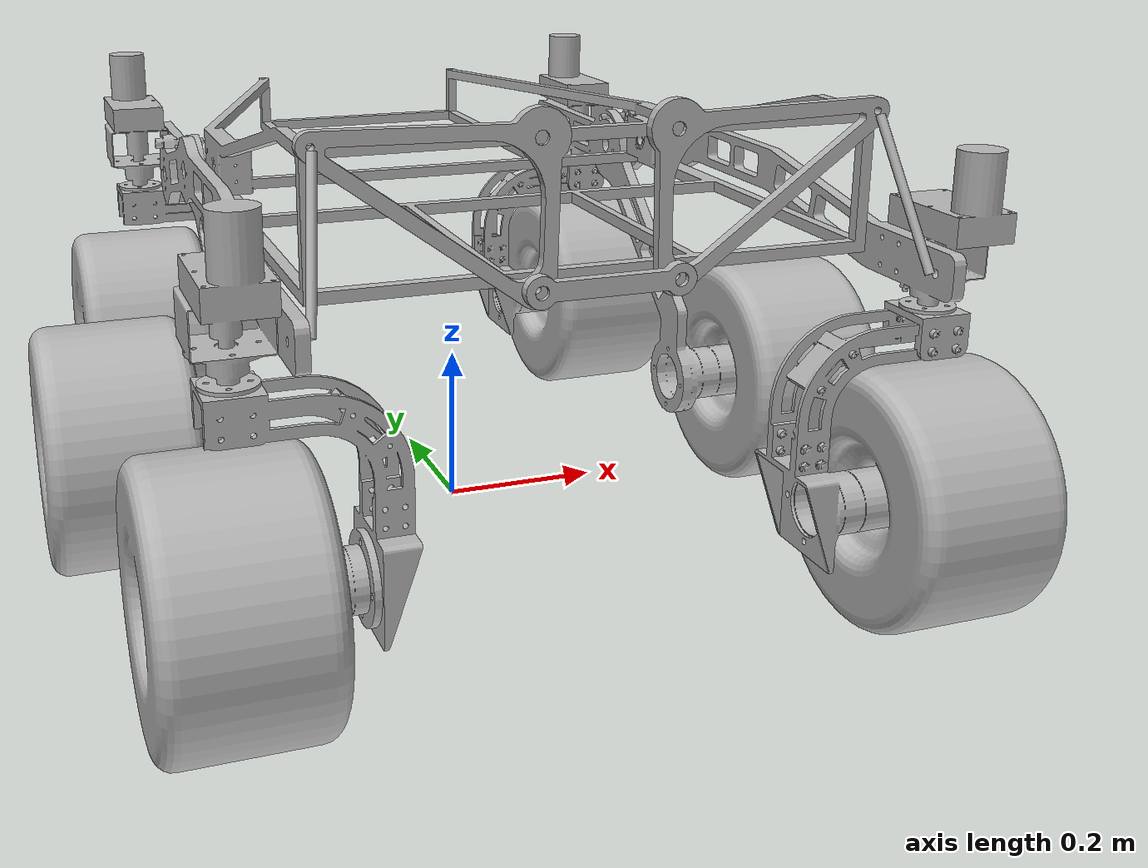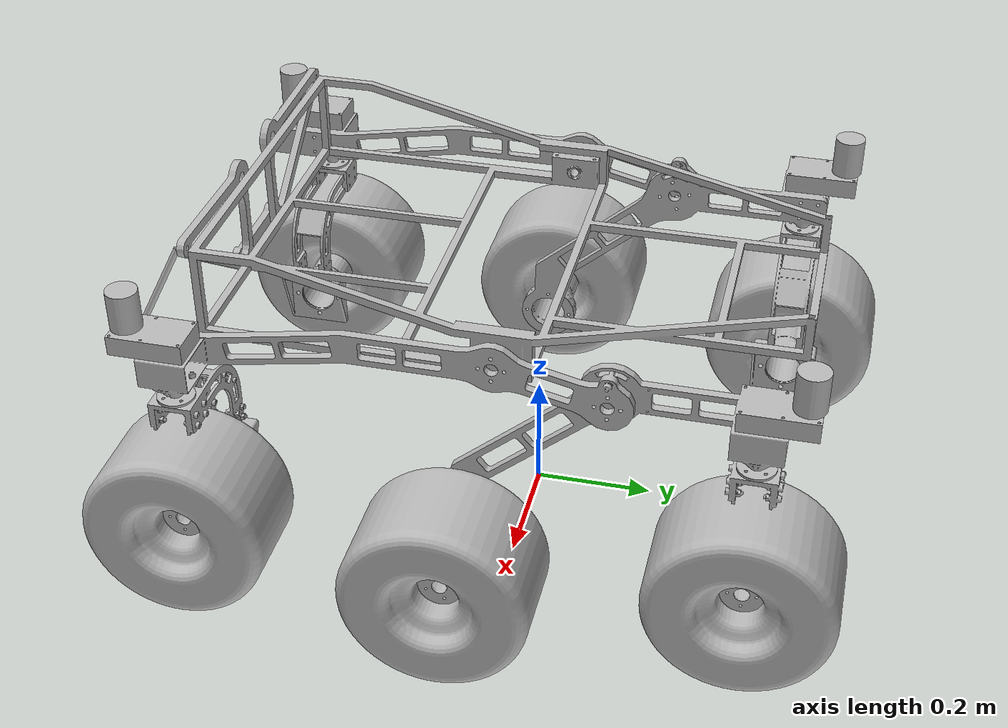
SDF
<?xml version='1.0'?>
<sdf version='1.4'>
<model name="MSI Rover">
  <static>0</static>

<!---------------------------      Chassis Assembly Begins       --------------------------->

  <link name='Chassis'>
    <self_collide>1</self_collide>
    <pose>0.0000 0.0000 0.4720 0.0000 0.0000 0.0000</pose>
    <collision name='Chassis_Collision'>
      <geometry>
        <mesh>
          <scale>0.0010 0.0010 0.0010</scale>
          <uri>model://msi_rover/meshes/Chassis.STL</uri>
        </mesh>
      </geometry>
<!------------ TODO ------------>
    </collision>
    <visual name='Chassis_Visual'>
      <geometry>
        <mesh>
          <scale>0.0010 0.0010 0.0010</scale>
          <uri>model://msi_rover/meshes/Chassis.STL</uri>
        </mesh>
      </geometry>
<!------------ TODO ------------>
    </visual>
    <inertial>
      <mass>7.25940145</mass>                                  <!-- Volume = 0.000902 m^3 -->
      <pose>0.000039 -0.055951 0.001287 0 0 0</pose>
      <inertia>
        <ixx>54.5702500000</ixx>
        <ixy>-0.0031848454</ixy>
        <ixz>-0.001413798</ixz>
        <iyy>55.8663750000</iyy>
        <iyz>2.6596287109</iyz>
        <izz>107.3700250000</izz>
      </inertia>
    </inertial>
  </link>

<!---------------------------       Chassis Assembly Ends        --------------------------->
<!--------------------------- Left Rocker-Bogie Assembly Begins  --------------------------->

  <link name='Left_Rocker'>
    <self_collide>1</self_collide>
    <pose>-0.3270 0.0000 0.4720 0.0000 0.0000 0.0000</pose>
    <collision name='Left_Rocker_Collision'>
      <geometry>
        <mesh>
          <scale>0.0010 0.0010 0.0010</scale>
          <uri>model://msi_rover/meshes/Rocker_L.STL</uri>
        </mesh>
      </geometry>
<!------------ TODO ------------>
    </collision>
    <visual name='Left_Rocker_Visual'>
      <geometry>
        <mesh>
          <scale>0.0010 0.0010 0.0010</scale>
          <uri>model://msi_rover/meshes/Rocker_L.STL</uri>
        </mesh>
      </geometry>
<!------------ TODO ------------>
    </visual>
<!------------ TODO ------------>
  </link>

  <link name='Left_Bogie'>
    <self_collide>1</self_collide>
    <pose>-0.2940 0.1750 0.4320 0.0000 0.0000 0.0000</pose>
    <collision name='Left_Bogie_Collision'>
      <geometry>
        <mesh>
          <scale>0.0010 0.0010 0.0010</scale>
          <uri>model://msi_rover/meshes/Bogie_L.STL</uri>
        </mesh>
      </geometry>
<!------------ TODO ------------>
    </collision>
    <visual name='Left_Bogie_Visual'>
      <geometry>
        <mesh>
          <scale>0.0010 0.0010 0.0010</scale>
          <uri>model://msi_rover/meshes/Bogie_L.STL</uri>
        </mesh>
      </geometry>
<!------------ TODO ------------>
    </visual>
<!------------ TODO ------------>
  </link>

  <link name='Left_Rear_Steering'>
    <self_collide>1</self_collide>
    <pose>-0.3810 -0.4900 0.36800 0.0000 0.0000 0.0000</pose>
    <collision name='Left_Rear_Steering_Collision'>
      <geometry>
        <mesh>
          <scale>0.0010 0.0010 0.0010</scale>
          <uri>model://msi_rover/meshes/C_Assembly_L.STL</uri>
        </mesh>
      </geometry>
<!------------ TODO ------------>
    </collision>
    <visual name='Left_Rear_Steering_Visual'>
      <geometry>
        <mesh>
          <scale>0.0010 0.0010 0.0010</scale>
          <uri>model://msi_rover/meshes/C_Assembly_L.STL</uri>
        </mesh>
      </geometry>
<!------------ TODO ------------>
    </visual>
<!------------ TODO ------------>
  </link>

  <link name='Left_Front_Steering'>
    <self_collide>1</self_collide>
    <pose>-0.3480 0.4000 0.3680 0.0000 0.0000 0.0000</pose>
    <collision name='Left_Front_Steering_Collision'>
      <geometry>
        <mesh>
          <scale>0.0010 0.0010 0.0010</scale>
          <uri>model://msi_rover/meshes/C_Assembly_L.STL</uri>
        </mesh>
      </geometry>
<!------------ TODO ------------>
    </collision>
    <visual name='Left_Front_Steering_Visual'>
      <geometry>
        <mesh>
          <scale>0.0010 0.0010 0.0010</scale>
          <uri>model://msi_rover/meshes/C_Assembly_L.STL</uri>
        </mesh>
      </geometry>
<!------------ TODO ------------>
    </visual>
<!------------ TODO ------------>
  </link>

  <link name='Left_Rear_Tyre'>
    <self_collide>1</self_collide>
    <pose>-0.3910 -0.4900 0.1500 0.0000 0.0000 0.0000</pose>
    <collision name='Left_Rear_Tyre_Collision'>
      <geometry>
        <mesh>
          <scale>0.0010 0.0010 0.0010</scale>
          <uri>model://msi_rover/meshes/Tyre.STL</uri>
        </mesh>
      </geometry>
<!------------ TODO ------------>
    </collision>
    <visual name='Left_Rear_Tyre_Visual'>
      <geometry>
        <mesh>
          <scale>0.0010 0.0010 0.0010</scale>
          <uri>model://msi_rover/meshes/Tyre.STL</uri>
        </mesh>
      </geometry>
<!------------ TODO ------------>
    </visual>
<!------------ TODO ------------>
  </link>

  <link name='Left_Middle_Tyre'>
    <self_collide>1</self_collide>
    <pose>-0.4480 -0.0500 0.1500 0.0000 0.0000 0.0000</pose>
    <collision name='Left_Middle_Tyre_Collision'>
      <geometry>
        <mesh>
          <scale>0.0010 0.0010 0.0010</scale>
          <uri>model://msi_rover/meshes/Tyre.STL</uri>
        </mesh>
      </geometry>
<!------------ TODO ------------>
    </collision>
    <visual name='Left_Middle_Tyre_Visual'>
      <geometry>
        <mesh>
          <scale>0.0010 0.0010 0.0010</scale>
          <uri>model://msi_rover/meshes/Tyre.STL</uri>
        </mesh>
      </geometry>
<!------------ TODO ------------>
    </visual>
<!------------ TODO ------------>
  </link>

  <link name='Left_Front_Tyre'>
    <self_collide>1</self_collide>
    <pose>-0.3580 0.4000 0.1500 0.0000 0.0000 0.0000</pose>
    <collision name='Left_Front_Tyre_Collision'>
      <geometry>
        <mesh>
          <scale>0.0010 0.0010 0.0010</scale>
          <uri>model://msi_rover/meshes/Tyre.STL</uri>
        </mesh>
      </geometry>
<!------------ TODO ------------>
    </collision>
    <visual name='Left_Front_Tyre_Visual'>
      <geometry>
        <mesh>
          <scale>0.0010 0.0010 0.0010</scale>
          <uri>model://msi_rover/meshes/Tyre.STL</uri>
        </mesh>
      </geometry>
<!------------ TODO ------------>
    </visual>
<!------------ TODO ------------>
  </link>

<!---------------------------         Joints Subsection          --------------------------->

  <joint type="revolute" name="Left_Rocker_Joint">
    <pose>0.0000 0.0000 0.0000 0.0000 0.0000 0.0000</pose>
    <child>Left_Rocker</child>
    <parent>Chassis</parent>
    <axis>
      <xyz>1 0 0</xyz>
<!------------ TODO ------------>
    </axis>
<!------------ TODO ------------>
  </joint>

  <joint type="revolute" name="Left_Bogie_Joint">
    <pose>0.0000 0.0000 0.0000 0.0000 0.0000 0.0000</pose>
    <child>Left_Bogie</child>
    <parent>Left_Rocker</parent>
    <axis>
      <xyz>1 0 0</xyz>
<!------------ TODO ------------>
    </axis>
<!------------ TODO ------------>
  </joint>

  <joint type="revolute" name="Left_Rear_Steering_Joint">
    <pose>0.0000 0.0000 0.0000 0.0000 0.0000 0.0000</pose>
    <child>Left_Rear_Steering</child>
    <parent>Left_Rocker</parent>
    <axis>
      <xyz>0 0 -1</xyz>
<!------------ TODO ------------>
      <limit>
        <lower>0</lower>
        <upper>0</upper>
      </limit>
<!------------ TODO ------------>
    </axis>
<!------------ TODO ------------>
  </joint>

  <joint type="revolute" name="Left_Front_Steering_Joint">
    <pose>0.0000 0.0000 0.0000 0.0000 0.0000 0.0000</pose>
    <child>Left_Front_Steering</child>
    <parent>Left_Bogie</parent>
    <axis>
      <xyz>0 0 -1</xyz>
<!------------ TODO ------------>
      <limit>
        <lower>0</lower>
        <upper>0</upper>
      </limit>
<!------------ TODO ------------>
    </axis>
<!------------ TODO ------------>
  </joint>

  <joint type="revolute" name="Left_Rear_Tyre_Joint">
    <pose>0.0000 0.0000 0.0000 0.0000 0.0000 0.0000</pose>
    <child>Left_Rear_Tyre</child>
    <parent>Left_Rear_Steering</parent>
    <axis>
      <xyz>1 0 0</xyz>
<!------------ TODO ------------>
    </axis>
<!------------ TODO ------------>
  </joint>

  <joint type="revolute" name="Left_Middle_Tyre_Joint">
    <pose>0.0000 0.0000 0.0000 0.0000 0.0000 0.0000</pose>
    <child>Left_Middle_Tyre</child>
    <parent>Left_Bogie</parent>
    <axis>
      <xyz>1 0 0</xyz>
<!------------ TODO ------------>
    </axis>
<!------------ TODO ------------>
  </joint>

  <joint type="revolute" name="Left_Front_Tyre_Joint">
    <pose>0.0000 0.0000 0.0000 0.0000 0.0000 0.0000</pose>
    <child>Left_Front_Tyre</child>
    <parent>Left_Front_Steering</parent>
    <axis>
      <xyz>1 0 0</xyz>
<!------------ TODO ------------>
    </axis>
<!------------ TODO ------------>
  </joint>

<!---------------------------  Left Rocker-Bogie Assembly Ends   --------------------------->
<!--------------------------- Right Rocker-Bogie Assembly Begins --------------------------->

  <link name='Right_Rocker'>
    <self_collide>1</self_collide>
    <pose>0.3270 0.0000 0.4720 0.0000 0.0000 0.0000</pose>
    <collision name='Right_Rocker_Collision'>
      <geometry>
        <mesh>
          <scale>0.0010 0.0010 0.0010</scale>
          <uri>model://msi_rover/meshes/Rocker_R.STL</uri>
        </mesh>
      </geometry>
<!------------ TODO ------------>
    </collision>
    <visual name='Right_Rocker_Visual'>
      <geometry>
        <mesh>
          <scale>0.0010 0.0010 0.0010</scale>
          <uri>model://msi_rover/meshes/Rocker_R.STL</uri>
        </mesh>
      </geometry>
<!------------ TODO ------------>
    </visual>
<!------------ TODO ------------>
  </link>

  <link name='Right_Bogie'>
    <self_collide>1</self_collide>
    <pose>0.2940 0.1750 0.4320 0.0000 0.0000 0.0000</pose>
    <collision name='Right_Bogie_Collision'>
      <geometry>
        <mesh>
          <scale>0.0010 0.0010 0.0010</scale>
          <uri>model://msi_rover/meshes/Bogie_R.STL</uri>
        </mesh>
      </geometry>
<!------------ TODO ------------>
    </collision>
    <visual name='Right_Bogie_Visual'>
      <geometry>
        <mesh>
          <scale>0.0010 0.0010 0.0010</scale>
          <uri>model://msi_rover/meshes/Bogie_R.STL</uri>
        </mesh>
      </geometry>
<!------------ TODO ------------>
    </visual>
<!------------ TODO ------------>
  </link>

  <link name='Right_Rear_Steering'>
    <self_collide>1</self_collide>
    <pose>0.3810 -0.4900 0.3680 0.0000 0.0000 0.0000</pose>
    <collision name='Right_Rear_Steering_Collision'>
      <geometry>
        <mesh>
          <scale>0.0010 0.0010 0.0010</scale>
          <uri>model://msi_rover/meshes/C_Assembly_R.STL</uri>
        </mesh>
      </geometry>
<!------------ TODO ------------>
    </collision>
    <visual name='Right_Rear_Steering_Visual'>
      <geometry>
        <mesh>
          <scale>0.0010 0.0010 0.0010</scale>
          <uri>model://msi_rover/meshes/C_Assembly_R.STL</uri>
        </mesh>
      </geometry>
<!------------ TODO ------------>
    </visual>
<!------------ TODO ------------>
  </link>

  <link name='Right_Front_Steering'>
    <self_collide>1</self_collide>
    <pose>0.3480 0.4000 0.3680 0.0000 0.0000 0.0000</pose>
    <collision name='Right_Front_Steering_Collision'>
      <geometry>
        <mesh>
          <scale>0.0010 0.0010 0.0010</scale>
          <uri>model://msi_rover/meshes/C_Assembly_R.STL</uri>
        </mesh>
      </geometry>
<!------------ TODO ------------>
    </collision>
    <visual name='Right_Front_Steering_Visual'>
      <geometry>
        <mesh>
          <scale>0.0010 0.0010 0.0010</scale>
          <uri>model://msi_rover/meshes/C_Assembly_R.STL</uri>
        </mesh>
      </geometry>
<!------------ TODO ------------>
    </visual>
<!------------ TODO ------------>
  </link>

  <link name='Right_Rear_Tyre'>
    <self_collide>1</self_collide>
    <pose>0.3910 -0.4900 0.1500 0.0000 0.0000 0.0000</pose>
    <collision name='Right_Rear_Tyre_Collision'>
      <geometry>
        <mesh>
          <scale>0.0010 0.0010 0.0010</scale>
          <uri>model://msi_rover/meshes/Tyre.STL</uri>
        </mesh>
      </geometry>
<!------------ TODO ------------>
    </collision>
    <visual name='Right_Rear_Tyre_Visual'>
      <geometry>
        <mesh>
          <scale>0.0010 0.0010 0.0010</scale>
          <uri>model://msi_rover/meshes/Tyre.STL</uri>
        </mesh>
      </geometry>
<!------------ TODO ------------>
    </visual>
<!------------ TODO ------------>
  </link>

  <link name='Right_Middle_Tyre'>
    <self_collide>1</self_collide>
    <pose>0.4480 -0.0500 0.1500 0.0000 0.0000 0.0000</pose>
    <collision name='Right_Middle_Tyre_Collision'>
      <geometry>
        <mesh>
          <scale>0.0010 0.0010 0.0010</scale>
          <uri>model://msi_rover/meshes/Tyre.STL</uri>
        </mesh>
      </geometry>
<!------------ TODO ------------>
    </collision>
    <visual name='Right_Middle_Tyre_Visual'>
      <geometry>
        <mesh>
          <scale>0.0010 0.0010 0.0010</scale>
          <uri>model://msi_rover/meshes/Tyre.STL</uri>
        </mesh>
      </geometry>
<!------------ TODO ------------>
    </visual>
<!------------ TODO ------------>
  </link>

  <link name='Right_Front_Tyre'>
    <self_collide>1</self_collide>
    <pose>0.3580 0.4000 0.1500 0.0000 0.0000 0.0000</pose>
    <collision name='Right_Front_Tyre_Collision'>
      <geometry>
        <mesh>
          <scale>0.0010 0.0010 0.0010</scale>
          <uri>model://msi_rover/meshes/Tyre.STL</uri>
        </mesh>
      </geometry>
<!------------ TODO ------------>
    </collision>
    <visual name='Right_Front_Tyre_Visual'>
      <geometry>
        <mesh>
          <scale>0.0010 0.0010 0.0010</scale>
          <uri>model://msi_rover/meshes/Tyre.STL</uri>
        </mesh>
      </geometry>
<!------------ TODO ------------>
    </visual>
<!------------ TODO ------------>
  </link>

<!---------------------------         Joints Subsection          --------------------------->

  <joint type="revolute" name="Right_Rocker_Joint">
    <pose>0.0000 0.0000 0.0000 0.0000 0.0000 0.0000</pose>
    <child>Right_Rocker</child>
    <parent>Chassis</parent>
    <axis>
      <xyz>1 0 0</xyz>
<!------------ TODO ------------>
    </axis>
<!------------ TODO ------------>
  </joint>

  <joint type="revolute" name="Right_Bogie_Joint">
    <pose>0.0000 0.0000 0.0000 0.0000 0.0000 0.0000</pose>
    <child>Right_Bogie</child>
    <parent>Right_Rocker</parent>
    <axis>
      <xyz>1 0 0</xyz>
<!------------ TODO ------------>
    </axis>
<!------------ TODO ------------>
  </joint>

  <joint type="revolute" name="Right_Rear_Steering_Joint">
    <pose>0.0000 0.0000 0.0000 0.0000 0.0000 0.0000</pose>
    <child>Right_Rear_Steering</child>
    <parent>Right_Rocker</parent>
    <axis>
      <xyz>0 0 -1</xyz>
<!------------ TODO ------------>
      <limit>
        <lower>0</lower>
        <upper>0</upper>
      </limit>
<!------------ TODO ------------>
    </axis>
<!------------ TODO ------------>
  </joint>

  <joint type="revolute" name="Right_Front_Steering_Joint">
    <pose>0.0000 0.0000 0.0000 0.0000 0.0000 0.0000</pose>
    <child>Right_Front_Steering</child>
    <parent>Right_Bogie</parent>
    <axis>
      <xyz>0 0 -1</xyz>
<!------------ TODO ------------>
      <limit>
        <lower>0</lower>
        <upper>0</upper>
      </limit>
<!------------ TODO ------------>
    </axis>
<!------------ TODO ------------>
  </joint>

  <joint type="revolute" name="Right_Rear_Tyre_Joint">
    <pose>0.0000 0.0000 0.0000 0.0000 0.0000 0.0000</pose>
    <child>Right_Rear_Tyre</child>
    <parent>Right_Rear_Steering</parent>
    <axis>
      <xyz>1 0 0</xyz>
<!------------ TODO ------------>
    </axis>
<!------------ TODO ------------>
  </joint>

  <joint type="revolute" name="Right_Middle_Tyre_Joint">
    <pose>0.0000 0.0000 0.0000 0.0000 0.0000 0.0000</pose>
    <child>Right_Middle_Tyre</child>
    <parent>Right_Bogie</parent>
    <axis>
      <xyz>1 0 0</xyz>
<!------------ TODO ------------>
    </axis>
<!------------ TODO ------------>
  </joint>

  <joint type="revolute" name="Right_Front_Tyre_Joint">
    <pose>0.0000 0.0000 0.0000 0.0000 0.0000 0.0000</pose>
    <child>Right_Front_Tyre</child>
    <parent>Right_Front_Steering</parent>
    <axis>
      <xyz>1 0 0</xyz>
<!------------ TODO ------------>
    </axis>
<!------------ TODO ------------>
  </joint>

<!---------------------------  Right Rocker-Bogie Assembly Ends  --------------------------->
<!---------------------------  Triangle Support Assembly Begins  --------------------------->
<!------------------------  TODO: REPAIR AND COMPLETE THIS ASSEMBLY ------------------------>

  <link name='Left_Triangle'>
    <self_collide>1</self_collide>
    <pose>-0.0720 -0.4800 0.5820 0.0000 0.0000 0.0000</pose>
    <collision name='Left_Triangle_Collision'>
      <geometry>
        <mesh>
          <scale>0.0010 0.0010 0.0010</scale>
          <uri>model://msi_rover/meshes/Triangle_L.STL</uri>
        </mesh>
      </geometry>
<!------------ TODO ------------>
    </collision>
    <visual name='Left_Triangle_Visual'>
      <geometry>
        <mesh>
          <scale>0.0010 0.0010 0.0010</scale>
          <uri>model://msi_rover/meshes/Triangle_L.STL</uri>
        </mesh>
      </geometry>
<!------------ TODO ------------>
    </visual>
<!------------ TODO ------------>
  </link>

  <link name='Right_Triangle'>
    <self_collide>1</self_collide>
    <pose>0.0720 -0.4800 0.5820 0.0000 0.0000 0.0000</pose>
    <collision name='Right_Triangle_Collision'>
      <geometry>
        <mesh>
          <scale>0.0010 0.0010 0.0010</scale>
          <uri>model://msi_rover/meshes/Triangle_R.STL</uri>
        </mesh>
      </geometry>
<!------------ TODO ------------>
    </collision>
    <visual name='Right_Triangle_Visual'>
      <geometry>
        <mesh>
          <scale>0.0010 0.0010 0.0010</scale>
          <uri>model://msi_rover/meshes/Triangle_R.STL</uri>
        </mesh>
      </geometry>
<!------------ TODO ------------>
    </visual>
<!------------ TODO ------------>
  </link>

  <link name='Lower_Triangle_Rod'>
    <self_collide>1</self_collide>
    <pose>0.0000 -0.4930 0.4320 0.0000 0.0000 0.0000</pose>
    <collision name='Lower_Triangle_Rod_Collision'>
      <geometry>
        <mesh>
          <scale>0.0010 0.0010 0.0010</scale>
          <uri>model://msi_rover/meshes/Triangle_Rod.STL</uri>
        </mesh>
      </geometry>
<!------------ TODO ------------>
    </collision>
    <visual name='Lower_Triangle_Rod_Visual'>
      <geometry>
        <mesh>
          <scale>0.0010 0.0010 0.0010</scale>
          <uri>model://msi_rover/meshes/Triangle_Rod.STL</uri>
        </mesh>
      </geometry>
<!------------ TODO ------------>
    </visual>
<!------------ TODO ------------>
  </link>

  <link name='Left_Diff_Support'>
    <self_collide>1</self_collide>
    <pose>-0.3085 -0.5340 0.5080 -0.4500 0.1500 0.0000</pose>
    <collision name='Left_Diff_Support_Collision'>
      <geometry>
        <cylinder>
          <radius>0.0050</radius>
          <length>0.1700</length>
        </cylinder>
      </geometry>
<!------------ TODO ------------>
    </collision>
    <visual name='Left_Diff_Support_Visual'>
      <geometry>
        <cylinder>
          <radius>0.0050</radius>
          <length>0.1700</length>
        </cylinder>
      </geometry>
<!------------ TODO ------------>
    </visual>
<!------------ TODO ------------>
  </link>

  <link name='Right_Diff_Support'>
    <self_collide>1</self_collide>
    <pose>0.3085 -0.5340 0.5080 -0.4500 -0.1500 0.0000</pose>
    <collision name='Right_Diff_Support_Collision'>
      <geometry>
        <cylinder>
          <radius>0.0050</radius>
          <length>0.1700</length>
        </cylinder>
      </geometry>
<!------------ TODO ------------>
    </collision>
    <visual name='Right_Diff_Support_Visual'>
      <geometry>
        <cylinder>
          <radius>0.0050</radius>
          <length>0.1700</length>
        </cylinder>
      </geometry>
<!------------ TODO ------------>
    </visual>
<!------------ TODO ------------>
  </link>

<!---------------------------         Joints Subsection          --------------------------->

  <joint type="revolute" name="Right_Lower_Triangle_Rod_Joint">
    <pose>0.0750 0.0000 0.0000 0.0000 0.0000 0.0000</pose>
    <child>Lower_Triangle_Rod</child>
    <parent>Right_Triangle</parent>
    <axis>
      <xyz>0 1 0</xyz>
<!------------ TODO ------------>
    </axis>
<!------------ TODO ------------>
  </joint>

  <joint type="revolute" name="Left_Lower_Triangle_Rod_Joint">
    <pose>-0.0750 0.0000 0.0000 0.0000 0.0000 0.0000</pose>
    <child>Lower_Triangle_Rod</child>
    <parent>Left_Triangle</parent>
    <axis>
      <xyz>0 1 0</xyz>
<!------------ TODO ------------>
    </axis>
<!------------ TODO ------------>
  </joint>

  <joint type="revolute" name="Right_Triangle_Joint">
    <pose>0.0000 0.0000 0.0000 0.0000 0.0000 0.0000</pose>
    <child>Right_Triangle</child>
    <parent>Chassis</parent>
    <axis>
      <xyz>0 1 0</xyz>
<!------------ TODO ------------>
    </axis>
<!------------ TODO ------------>
  </joint>

  <joint type="revolute" name="Left_Triangle_Joint">
    <pose>0.0000 0.0000 0.0000 0.0000 0.0000 0.0000</pose>
    <child>Left_Triangle</child>
    <parent>Chassis</parent>
    <axis>
      <xyz>0 1 0</xyz>
<!------------ TODO ------------>
    </axis>
<!------------ TODO ------------>
  </joint>

  <joint type="revolute2" name="Left_Diff_Support_Triangle_Joint">
    <pose>0.0000 0.0000 0.0880 0.0000 0.0000 0.0000</pose>
    <child>Left_Diff_Support</child>
    <parent>Left_Triangle</parent>
    <axis>
      <xyz>0 1 0</xyz>
<!------------ TODO ------------>
    </axis>
    <axis2>
      <xyz>0 0 1</xyz>
<!------------ TODO ------------>
    </axis2>
<!------------ TODO ------------>
  </joint>

  <joint type="revolute2" name="Left_Diff_Support_Rocker_Joint">
    <pose>0.0000 0.0000 -0.0860 0.0000 0.0000 0.0000</pose>
    <child>Left_Diff_Support</child>
    <parent>Left_Rocker</parent>
    <axis>
      <xyz>1 0 0</xyz>
<!------------ TODO ------------>
    </axis>
    <axis2>
      <xyz>0 0 1</xyz>
<!------------ TODO ------------>
    </axis2>
<!------------ TODO ------------>
  </joint>

  <joint type="revolute2" name="Right_Diff_Support_Triangle_Joint">
    <pose>0.0000 0.0000 0.0880 0.0000 0.0000 0.0000</pose>
    <child>Right_Diff_Support</child>
    <parent>Right_Triangle</parent>
    <axis>
      <xyz>0 1 0</xyz>
<!------------ TODO ------------>
    </axis>
    <axis2>
      <xyz>0 0 1</xyz>
<!------------ TODO ------------>
    </axis2>
<!------------ TODO ------------>
  </joint>

  <joint type="revolute2" name="Right_Diff_Support_Rocker_Joint">
    <pose>0.0000 0.0000 -0.0860 0.0000 0.0000 0.0000</pose>
    <child>Right_Diff_Support</child>
    <parent>Right_Rocker</parent>
    <axis>
      <xyz>1 0 0</xyz>
<!------------ TODO ------------>
    </axis>
    <axis2>
      <xyz>0 0 1</xyz>
<!------------ TODO ------------>
    </axis2>
<!------------ TODO ------------>
  </joint>

<!---------------------------   Triangle Support Assembly Ends   --------------------------->

</model>
</sdf>
